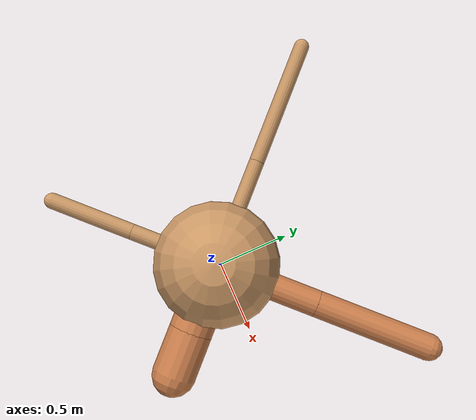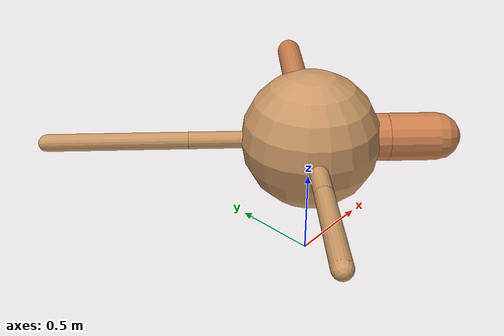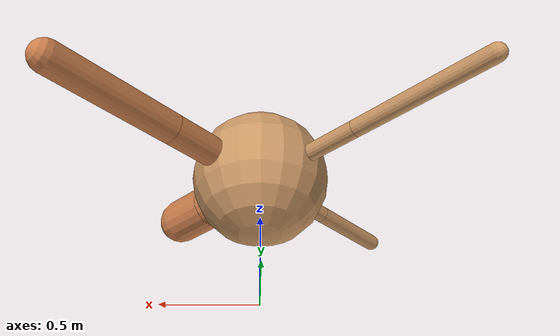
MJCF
<?xml version="1.0" ?>
<mujoco model="ant">

	<compiler angle="degree" coordinate="local" inertiafromgeom="true"/>

	<option integrator="RK4" timestep="0.01"/>

	<custom>

		<numeric data="0.0 0.0 0.55 1.0 0.0 0.0 0.0 0.0 1.0 0.0 -1.0 0.0 -1.0 0.0 1.0" name="init_qpos"/>

	</custom>

	<default>

		<joint armature="1" damping="1" limited="true"/>

		<geom conaffinity="0" condim="3" density="5.0" friction="1.5 0.1 0.1" margin="0.01" rgba="0.8 0.6 0.4 1"/>

	</default>

	<worldbody>

		<body name="torso" pos="0 0 0.75">

			<geom name="torso_geom" pos="0 0 0" size="0.3806169017495493" type="sphere"/>

			<!--joint armature="0" damping="0" limited="false" margin="0.01" name="root" pos="0 0 0" type="free"/-->

			<body name="front_left_leg" pos="0 0 0">

				<geom fromto="0 0 0 0.2 0.2 0" name="aux_1_geom" size="0.08122537733036861" type="capsule" rgba=".8 .5 .3 1"/>

				<body name="aux_1" pos="0.2 0.2 0">

					<joint axis="0 0 1" name="hip_1" pos="0.0 0.0 0.0" range="-40 40" type="hinge"/>

					<geom fromto="0 0 0 0.2482692442133857 0.2482692442133857 0" name="left_leg_geom" size="0.08122537733036861" type="capsule" rgba=".8 .5 .3 1"/>

					<body pos="0.2482692442133857 0.2482692442133857 0" name="front_left_foot">

						<joint axis="-1 1 0" name="ankle_1" pos="0.0 0.0 0.0" range="30 100" type="hinge"/>

						<geom fromto="0 0 0 0.4965384884267714 0.4965384884267714 0" name="left_ankle_geom" size="0.08122537733036861" type="capsule" rgba=".8 .5 .3 1"/>

					</body>

				</body>

			</body>

			<body name="front_right_leg" pos="0 0 0">

				<geom fromto="0 0 0 -0.2 0.2 0" name="aux_2_geom" size="0.04668074685152947" type="capsule"/>

				<body name="aux_2" pos="-0.2 0.2 0">

					<joint axis="0 0 1" name="hip_2" pos="0.0 0.0 0.0" range="-40 40" type="hinge"/>

					<geom fromto="0 0 0 -0.2683883096443583 0.2683883096443583 0" name="right_leg_geom" size="0.04668074685152947" type="capsule"/>

					<body pos="-0.2683883096443583 0.2683883096443583 0" name="front_right_foot">

						<joint axis="1 1 0" name="ankle_2" pos="0.0 0.0 0.0" range="-100 -30" type="hinge"/>

						<geom fromto="0 0 0 -0.5367766192887166 0.5367766192887166 0" name="right_ankle_geom" size="0.04668074685152947" type="capsule"/>

					</body>

				</body>

			</body>

			<body name="left_back_leg" pos="0 0 0">

				<geom fromto="0 0 0 -0.2 -0.2 0" name="aux_3_geom" size="0.04877370406237222" type="capsule"/>

				<body name="aux_3" pos="-0.2 -0.2 0">

					<joint axis="0 0 1" name="hip_3" pos="0.0 0.0 0.0" range="-40 40" type="hinge"/>

					<geom fromto="0 0 0 -0.18215952300760008 -0.18215952300760008 0" name="back_leg_geom" size="0.04877370406237222" type="capsule"/>

					<body pos="-0.18215952300760008 -0.18215952300760008 0" name="left_back_foot">

						<joint axis="-1 1 0" name="ankle_3" pos="0.0 0.0 0.0" range="-100 -30" type="hinge"/>

						<geom fromto="0 0 0 -0.36431904601520015 -0.36431904601520015 0" name="third_ankle_geom" size="0.04877370406237222" type="capsule"/>

					</body>

				</body>

			</body>

			<body name="right_back_leg" pos="0 0 0">

				<geom fromto="0 0 0 0.2 -0.2 0" name="aux_4_geom" size="0.1311601937653665" type="capsule" rgba=".8 .5 .3 1"/>

				<body name="aux_4" pos="0.2 -0.2 0">

					<joint axis="0 0 1" name="hip_4" pos="0.0 0.0 0.0" range="-40 40" type="hinge"/>

					<geom fromto="0 0 0 0.09567696847653502 -0.09567696847653502 0" name="rightback_leg_geom" size="0.1311601937653665" type="capsule" rgba=".8 .5 .3 1"/>

					<body pos="0.09567696847653502 -0.09567696847653502 0" name="right_back_foot">

						<joint axis="1 1 0" name="ankle_4" pos="0.0 0.0 0.0" range="30 100" type="hinge"/>

						<geom fromto="0 0 0 0.19135393695307004 -0.19135393695307004 0" name="fourth_ankle_geom" size="0.1311601937653665" type="capsule" rgba=".8 .5 .3 1"/>

					</body>

				</body>

			</body>

		</body>

	</worldbody>

	<actuator>

		<motor ctrllimited="true" ctrlrange="-1.0 1.0" joint="hip_4" gear="150"/>

		<motor ctrllimited="true" ctrlrange="-1.0 1.0" joint="ankle_4" gear="150"/>

		<motor ctrllimited="true" ctrlrange="-1.0 1.0" joint="hip_1" gear="150"/>

		<motor ctrllimited="true" ctrlrange="-1.0 1.0" joint="ankle_1" gear="150"/>

		<motor ctrllimited="true" ctrlrange="-1.0 1.0" joint="hip_2" gear="150"/>

		<motor ctrllimited="true" ctrlrange="-1.0 1.0" joint="ankle_2" gear="150"/>

		<motor ctrllimited="true" ctrlrange="-1.0 1.0" joint="hip_3" gear="150"/>

		<motor ctrllimited="true" ctrlrange="-1.0 1.0" joint="ankle_3" gear="150"/>

	</actuator>

</mujoco>
